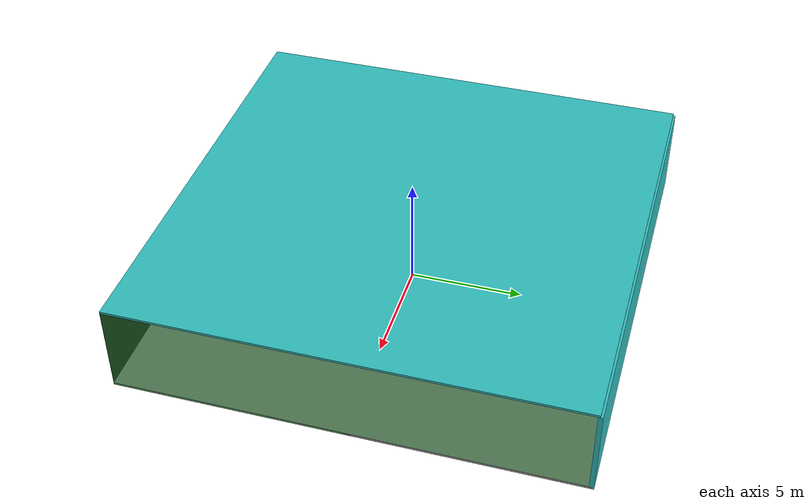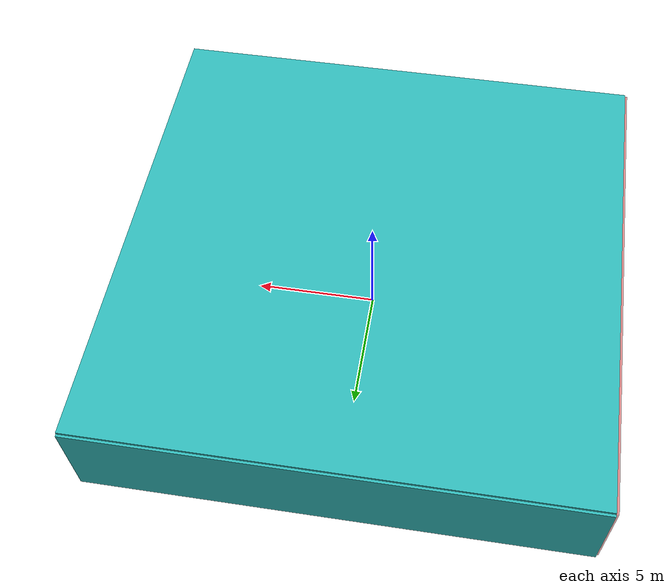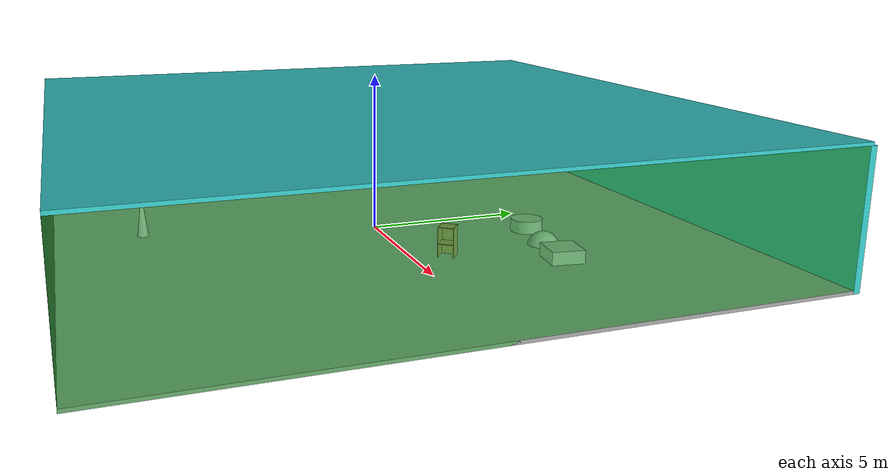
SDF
<sdf version="1.4">
 <world name="default">
  <physics type="ode">
   <max_step_size>0.001</max_step_size>
   <real_time_factor>1</real_time_factor>
   <real_time_update_rate>1000</real_time_update_rate>
   <gravity>0 0 -9.8</gravity>
  </physics>
  <scene><ambient>0.4 0.4 0.4 1</ambient><background>0.7 0.7 0.7 1</background><shadows>1</shadows></scene>
  <model name="Surrounding">
   <static>1</static>
   <link name="Ceiling">
    <collision name="Ceiling_Collision"><geometry><box><size>20 20 0.1</size></box></geometry></collision>
    <visual name="Ceiling_Visual">
     <geometry><box><size>20 20 0.1</size></box></geometry>
     <material>
      <script><uri>file://media/materials/scripts/gazebo.material</uri><name>Gazebo/TurquoiseGlow</name></script>
     </material>
    </visual>
    <pose>0 0 4.05 0 0 0</pose>
   </link>
   <link name="Wall_South">
    <collision name="Wall_South_Collision">
     <geometry><box><size>20 0 4</size></box></geometry>
     <pose>0 0 2 0 -0 0</pose>
    </collision>
    <visual name="Wall_South_Visual">
     <pose>0 0 2 0 -0 0</pose>
     <geometry><box><size>20 0 4</size></box></geometry>
     <material>
      <script><uri>file://media/materials/scripts/gazebo.material</uri><name>Gazebo/FlatBlack</name></script>
     </material>
    </visual>
    <velocity_decay><linear>0</linear><angular>0</angular></velocity_decay>
    <pose>0 -10 0 0 -0 0</pose>
   </link>
   <link name="Wall_East">
    <collision name="Wall_21_Collision">
     <geometry><box><size>20 0 4</size></box></geometry>
     <pose>0 0 2 0 -0 0</pose>
    </collision>
    <visual name="Wall_21_Visual">
     <pose>0 0 2 0 -0 0</pose>
     <geometry><box><size>20 0 4</size></box></geometry>
     <material>
      <script><uri>file://media/materials/scripts/gazebo.material</uri><name>Gazebo/GreenTransparent</name></script>
     </material>
    </visual>
    <velocity_decay><linear>0</linear><angular>0</angular></velocity_decay>
    <pose>10 0 0 0 -0 1.5708</pose>
   </link>
   <link name="Wall_North">
    <collision name="Wall_22_Collision">
     <geometry><box><size>20 0.2 4</size></box></geometry>
     <pose>0 0 2 0 -0 0</pose>
    </collision>
    <visual name="Wall_22_Visual">
     <pose>0 0 2 0 -0 0</pose>
     <geometry><box><size>20 0.2 4</size></box></geometry>
     <material>
      <script><uri>file://media/materials/scripts/gazebo.material</uri><name>Gazebo/TurquoiseGlow</name></script>
     </material>
    </visual>
    <velocity_decay><linear>0</linear><angular>0</angular></velocity_decay>
    <pose>0 10 0 0 -0 0</pose>
   </link>
   <link name="Wall_West">
    <collision name="Wall_23_Collision">
     <geometry><box><size>20 0.2 4</size></box></geometry>
     <pose>0 0 2 0 -0 0</pose>
    </collision>
    <visual name="Wall_23_Visual">
     <pose>0 0 2 0 -0 0</pose>
     <geometry><box><size>20 0.2 4</size></box></geometry>
     <material>
      <script><uri>file://media/materials/scripts/gazebo.material</uri><name>Gazebo/RedTransparent</name></script>
     </material>
    </visual>
    <velocity_decay><linear>0</linear><angular>0</angular></velocity_decay>
    <pose>-10 0 0 0 0 -1.5708</pose>
   </link>
   <link name="Ground_link">
    <collision name="collision">
     <pose>0 0 .05 0 -0 0</pose>
     <geometry><box><size>20 20 0.1</size></box></geometry>
    </collision>
    <visual name="visual">
     <pose>0 0 .05 0 -0 0</pose>
     <geometry><box><size>20 20 0.1</size></box></geometry>
     <material>
      <script><uri>file://media/materials/scripts/gazebo.material</uri><name>Gazebo/GreyGradientSky</name></script>
     </material>
    </visual>
   </link>
   <static>1</static>
  </model>
  <spherical_coordinates>
   <surface_model>EARTH_WGS84</surface_model>
   <latitude_deg>0</latitude_deg>
   <longitude_deg>0</longitude_deg>
   <elevation>0</elevation>
   <heading_deg>0</heading_deg>
  </spherical_coordinates>
  <light name="lightball_0" type="diffuse">
   <diffuse>0.8 0.8 0.8 1</diffuse>
   <specular>0.2 0.2 0.2 1</specular>
   <attenuation>
    <range>100</range>
    <constant>0.7</constant>
    <linear>0.01</linear>
    <quadratic>0.001</quadratic>
   </attenuation>
   <direction>-0.5 0.1 -0.9</direction>
   <pose>-4.03586133384 -0.982179736911 1.85736024666 0 0 0</pose>
  </light>
  <light name="lightball_1" type="diffuse">
   <diffuse>0.8 0.8 0.8 1</diffuse>
   <specular>0.2 0.2 0.2 1</specular>
   <attenuation>
    <range>100</range>
    <constant>0.7</constant>
    <linear>0.01</linear>
    <quadratic>0.001</quadratic>
   </attenuation>
   <direction>-0.5 0.1 -0.9</direction>
   <pose>-1.11513868751 0.692741908417 2.91715423984 0 0 0</pose>
  </light>
  <light name="lightball_2" type="diffuse">
   <diffuse>0.8 0.8 0.8 1</diffuse>
   <specular>0.2 0.2 0.2 1</specular>
   <attenuation>
    <range>100</range>
    <constant>0.7</constant>
    <linear>0.01</linear>
    <quadratic>0.001</quadratic>
   </attenuation>
   <direction>-0.5 0.1 -0.9</direction>
   <pose>0.644238791574 -8.80169505134 2.72938278201 0 0 0</pose>
  </light>
  <light name="lightball_3" type="diffuse">
   <diffuse>0.8 0.8 0.8 1</diffuse>
   <specular>0.2 0.2 0.2 1</specular>
   <attenuation>
    <range>100</range>
    <constant>0.7</constant>
    <linear>0.01</linear>
    <quadratic>0.001</quadratic>
   </attenuation>
   <direction>-0.5 0.1 -0.9</direction>
   <pose>-3.11549455174 2.77914985643 2.31809707232 0 0 0</pose>
  </light>
  <light name="lightball_4" type="diffuse">
   <diffuse>0.8 0.8 0.8 1</diffuse>
   <specular>0.2 0.2 0.2 1</specular>
   <attenuation>
    <range>100</range>
    <constant>0.7</constant>
    <linear>0.01</linear>
    <quadratic>0.001</quadratic>
   </attenuation>
   <direction>-0.5 0.1 -0.9</direction>
   <pose>2.42568746991 -3.22141375816 2.76172297295 0 0 0</pose>
  </light>
  <light name="lightball_5" type="diffuse">
   <diffuse>0.8 0.8 0.8 1</diffuse>
   <specular>0.2 0.2 0.2 1</specular>
   <attenuation>
    <range>100</range>
    <constant>0.7</constant>
    <linear>0.01</linear>
    <quadratic>0.001</quadratic>
   </attenuation>
   <direction>-0.5 0.1 -0.9</direction>
   <pose>4.92329100212 -0.994160643882 3.2320353266 0 0 0</pose>
  </light>
  <light name="lightball_6" type="diffuse">
   <diffuse>0.8 0.8 0.8 1</diffuse>
   <specular>0.2 0.2 0.2 1</specular>
   <attenuation>
    <range>100</range>
    <constant>0.7</constant>
    <linear>0.01</linear>
    <quadratic>0.001</quadratic>
   </attenuation>
   <direction>-0.5 0.1 -0.9</direction>
   <pose>3.66873849694 -3.79816828176 3.75982716534 0 0 0</pose>
  </light>
  <light name="lightball_7" type="diffuse">
   <diffuse>0.8 0.8 0.8 1</diffuse>
   <specular>0.2 0.2 0.2 1</specular>
   <attenuation>
    <range>100</range>
    <constant>0.7</constant>
    <linear>0.01</linear>
    <quadratic>0.001</quadratic>
   </attenuation>
   <direction>-0.5 0.1 -0.9</direction>
   <pose>-3.61984301275 1.12337539904 0.55896872025 0 0 0</pose>
  </light>
  <light name="lightball_8" type="diffuse">
   <diffuse>0.8 0.8 0.8 1</diffuse>
   <specular>0.2 0.2 0.2 1</specular>
   <attenuation>
    <range>100</range>
    <constant>0.7</constant>
    <linear>0.01</linear>
    <quadratic>0.001</quadratic>
   </attenuation>
   <direction>-0.5 0.1 -0.9</direction>
   <pose>2.65926158811 8.0149145499 0.854755837009 0 0 0</pose>
  </light>
  <light name="lightball_9" type="diffuse">
   <diffuse>0.8 0.8 0.8 1</diffuse>
   <specular>0.2 0.2 0.2 1</specular>
   <attenuation>
    <range>100</range>
    <constant>0.7</constant>
    <linear>0.01</linear>
    <quadratic>0.001</quadratic>
   </attenuation>
   <direction>-0.5 0.1 -0.9</direction>
   <pose>-0.112555554374 -8.66516834366 3.35837982906 0 0 0</pose>
  </light>
  <light name="lightball_10" type="diffuse">
   <diffuse>0.8 0.8 0.8 1</diffuse>
   <specular>0.2 0.2 0.2 1</specular>
   <attenuation>
    <range>100</range>
    <constant>0.7</constant>
    <linear>0.01</linear>
    <quadratic>0.001</quadratic>
   </attenuation>
   <direction>-0.5 0.1 -0.9</direction>
   <pose>-1.84445210711 8.13614336424 3.85033779591 0 0 0</pose>
  </light>
  <include><uri>model://cabinet</uri><pose>-7.24595612892 -1.40425856661 0 0 0 1.63946810886</pose></include>
  <include>
   <uri>model://construction_cone</uri>
   <pose>-1.16133997279 -7.33713610404 0 0 0 0.570226930113</pose>
  </include>
  <include><uri>model://cabinet</uri><pose>3.80761311909 0.934026714051 0 0 0 2.47735614992</pose></include>
  <include>
   <uri>model://textured_shapes</uri>
   <pose>3.71002837697 4.16962519867 0 0 0 1.43187026253</pose>
  </include>
 </world>
</sdf>

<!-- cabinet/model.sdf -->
<sdf version="1.5">
  <model name="cabinet">
    <static>true</static>
    <link name="cabinet_bottom_plate">
      <inertial>
        <pose>0 0 -1 0 0 0</pose>
        <inertia>
          <ixx>2.050000</ixx>
          <ixy>0</ixy>
          <ixz>0</ixz>
          <iyy>2.050000</iyy>
          <iyz>0</iyz>
          <izz>2.050000</izz>
        </inertia>
        <mass>25.000000</mass>
      </inertial>
      <collision name="cabinet_bottom_plate_geom">
        <pose>0 0 0.010000 0 0 0</pose>
        <geometry>
          <box>
            <size>0.450000 0.450000 0.020000</size>
          </box>
        </geometry>
      </collision>
      <visual name="cabinet_bottom_plate_geom_visual">
        <pose>0 0 0.010000 0 0 0</pose>
        <geometry>
          <box>
            <size>0.450000 0.450000 0.020000</size>
          </box>
        </geometry>
        <material>
          <script>
            <uri>model://media/materials/scripts/gazebo.material</uri>
            <name>Gazebo/Wood</name>
          </script>
        </material>
      </visual>
      <collision name="cabinet_bottom_plate_geom_cabinet_back_plate">
        <pose>0.235000 0 0.510000 0 0 0</pose>
        <geometry>
          <box>
            <size>0.020000 0.450000 1.020000</size>
          </box>
        </geometry>
      </collision>
      <visual name="cabinet_bottom_plate_geom_cabinet_back_plate_visual">
        <pose>0.235000 0 0.510000 0 0 0</pose>
        <geometry>
          <box>
            <size>0.020000 0.450000 1.020000</size>
          </box>
        </geometry>
        <material>
          <script>
            <uri>model://media/materials/scripts/gazebo.material</uri>
            <name>Gazebo/Wood</name>
          </script>
        </material>
      </visual>
      <collision name="cabinet_bottom_plate_geom_cabinet_left_plate">
        <pose>0 0.235000 0.510000 0 0 0</pose>
        <geometry>
          <box>
            <size>0.450000 0.020000 1.020000</size>
          </box>
        </geometry>
      </collision>
      <visual name="cabinet_bottom_plate_geom_cabinet_left_plate_visual">
        <pose>0 0.235000 0.510000 0 0 0</pose>
        <geometry>
          <box>
            <size>0.450000 0.020000 1.020000</size>
          </box>
        </geometry>
        <material>
          <script>
            <uri>model://media/materials/scripts/gazebo.material</uri>
            <name>Gazebo/Wood</name>
          </script>
        </material>
      </visual>
      <collision name="cabinet_bottom_plate_geom_cabinet_middle_plate">
        <pose>0 0 0.510000 0 0 0</pose>
        <geometry>
          <box>
            <size>0.450000 0.450000 0.020000</size>
          </box>
        </geometry>
      </collision>
      <visual name="cabinet_bottom_plate_geom_cabinet_middle_plate_visual">
        <pose>0 0 0.510000 0 0 0</pose>
        <geometry>
          <box>
            <size>0.450000 0.450000 0.020000</size>
          </box>
        </geometry>
        <material>
          <script>
            <uri>model://media/materials/scripts/gazebo.material</uri>
            <name>Gazebo/Wood</name>
          </script>
        </material>
      </visual>
      <collision name="cabinet_bottom_plate_geom_cabinet_right_plate">
        <pose>0 -0.235000 0.510000 0 0 0</pose>
        <geometry>
          <box>
            <size>0.450000 0.020000 1.020000</size>
          </box>
        </geometry>
      </collision>
      <visual name="cabinet_bottom_plate_geom_cabinet_right_plate_visual">
        <pose>0 -0.235000 0.510000 0 0 0</pose>
        <geometry>
          <box>
            <size>0.450000 0.020000 1.020000</size>
          </box>
        </geometry>
        <material>
          <script>
            <uri>model://media/materials/scripts/gazebo.material</uri>
            <name>Gazebo/Wood</name>
          </script>
        </material>
      </visual>
      <collision name="cabinet_bottom_plate_geom_cabinet_top_plate">
        <pose>0 0 1.010000 0 0 0</pose>
        <geometry>
          <box>
            <size>0.450000 0.450000 0.020000</size>
          </box>
        </geometry>
      </collision>
      <visual name="cabinet_bottom_plate_geom_cabinet_top_plate_visual">
        <pose>0 0 1.010000 0 0 0</pose>
        <geometry>
          <box>
            <size>0.450000 0.450000 0.020000</size>
          </box>
        </geometry>
        <material>
          <script>
            <uri>model://media/materials/scripts/gazebo.material</uri>
            <name>Gazebo/Wood</name>
          </script>
        </material>
      </visual>
    </link>
  </model>
</sdf>

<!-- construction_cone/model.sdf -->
<sdf version="1.5">
  <model name="Construction Cone">
    <link name="link">
      <collision name="collision">
        <geometry>
          <mesh>
            <scale>10 10 10</scale>
            <uri>file://isr-testbed/construction_cone/meshes/construction_cone.dae</uri>
          </mesh>
        </geometry>
      </collision>
      <visual name="visual">
        <geometry>
          <mesh>
            <scale>10 10 10</scale>
            <uri>file://isr-testbed/construction_cone/meshes/construction_cone.dae</uri>
          </mesh>
        </geometry>
      </visual>
    </link>
  </model>
</sdf>

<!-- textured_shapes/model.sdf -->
<sdf version="1.6">
  <model name="textured_shapes">
    <pose>0 0 0.5 0 0 0</pose>
    <link name="box">
      <pose>0 -1.5 0 0 0 0</pose>
      <collision name="collision">
        <geometry>
          <box>
            <size>1 1 1</size>
          </box>
        </geometry>
      </collision>
      <visual name="visual">
        <geometry>
          <box>
            <size>1 1 1</size>
          </box>
        </geometry>
        <material>
          <script>
            <uri>model://../model_source/models/textured_shapes/materials/scripts</uri>
            <uri>model://../model_source/models/textured_shapes/materials/textures</uri>
            <name>TexturedShape/Squares</name>
          </script>
        </material>
      </visual>
    </link>
    <link name="sphere">
      <collision name="collision">
        <geometry>
          <sphere>
            <radius>0.5</radius>
          </sphere>
        </geometry>
      </collision>
      <visual name="visual">
        <geometry>
          <sphere>
            <radius>0.5</radius>
          </sphere>
        </geometry>
        <material>
          <script>
            <uri>model://../model_source/models/textured_shapes/materials/scripts</uri>
            <uri>model://../model_source/models/textured_shapes/materials/textures</uri>
            <name>TexturedShape/Squares</name>
          </script>
        </material>
      </visual>
    </link>
    <link name="cylinder">
      <pose>0 1.5 0 0 0 0</pose>
      <collision name="collision">
        <geometry>
          <cylinder>
            <radius>0.5</radius>
            <length>1</length>
          </cylinder>
        </geometry>
      </collision>
      <visual name="visual">
        <geometry>
          <cylinder>
            <radius>0.5</radius>
            <length>1</length>
          </cylinder>
        </geometry>
        <material>
          <script>
            <uri>model://../model_source/models/textured_shapes/materials/scripts</uri>
            <uri>model://../model_source/models/textured_shapes/materials/textures</uri>
            <name>TexturedShape/Squares</name>
          </script>
        </material>
      </visual>
    </link>
  </model>
</sdf>
